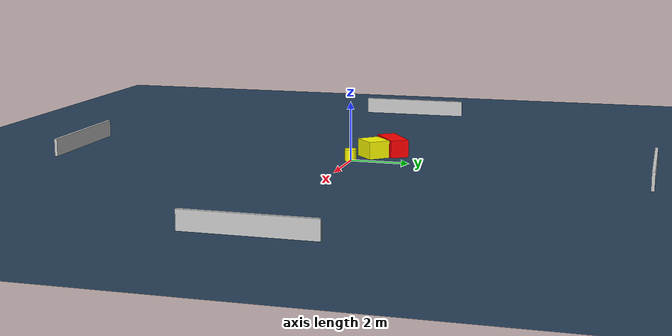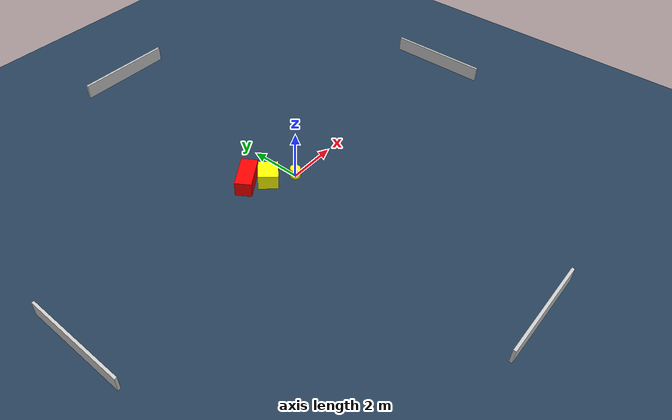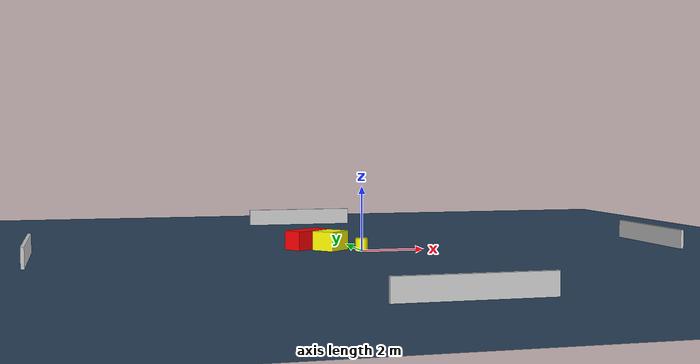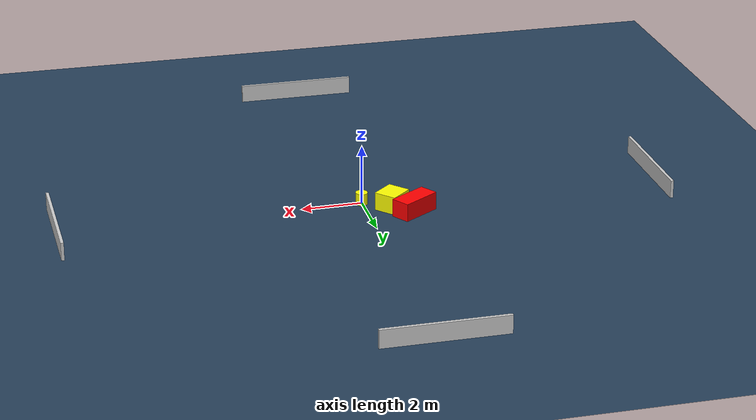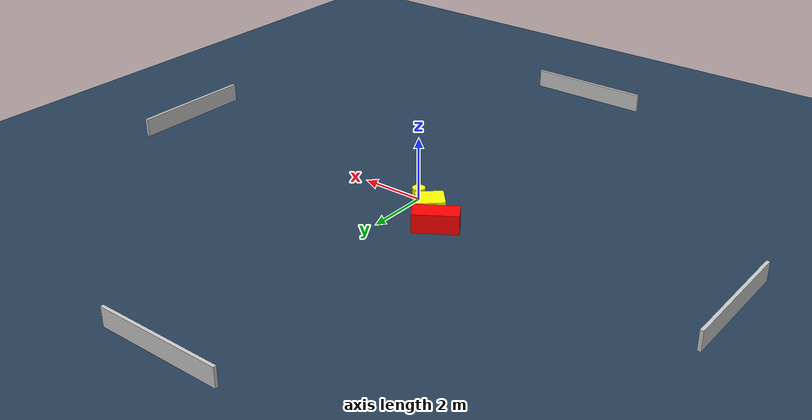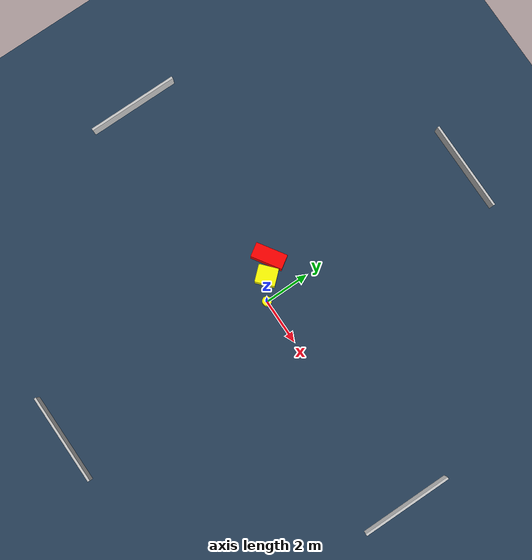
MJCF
<?xml version="1.0" ?>
<mujoco model="generated_environment">
  <option timestep="0.01" integrator="RK4" cone="elliptic"/>
  <default>
    <geom density="1"/>
  </default>
  <asset>
    <texture builtin="gradient" height="3072" name="skybox" rgb1="0.3 0.5 0.7" rgb2="0 0 0" type="skybox" width="512"/>
    <texture builtin="checker" height="300" name="groundplane" rgb1="0.2 0.3 0.4" rgb2="0.1 0.2 0.3" type="2d" width="300"/>
    <material name="groundplane" reflectance="0.2" texrepeat="5 5" texture="groundplane"/>
  </asset>
  <worldbody>
    <light dir="0 0 -1" directional="true" pos="0 0 1.5"/>
    <geom condim="3" friction="0.5 0.005 0.001" material="groundplane" name="floor" pos="0 0 0" size="0 0 0.05" type="plane"/>
    <body name="walls">
      <geom name="wall_1" condim="4" pos="-10.0 0.0 0.3" rgba="0.800000011920929 0.800000011920929 0.800000011920929 1.0" size="0.05 2.0 0.3" type="box"/>
      <geom name="wall_2" condim="4" pos="10.0 0.0 0.3" rgba="0.800000011920929 0.800000011920929 0.800000011920929 1.0" size="0.05 2.0 0.3" type="box"/>
      <geom name="wall_3" condim="4" pos="0.0 -10.0 0.3" rgba="0.800000011920929 0.800000011920929 0.800000011920929 1.0" size="2.0 0.05 0.3" type="box"/>
      <geom name="wall_4" condim="4" pos="0.0 10.0 0.3" rgba="0.800000011920929 0.800000011920929 0.800000011920929 1.0" size="2.0 0.05 0.3" type="box"/>
    </body>
    <body name="robot">
      <joint name="joint_x" type="slide" pos="0 0 0" axis="1 0 0"/>
      <joint name="joint_y" type="slide" pos="0 0 0" axis="0 1 0"/>
      <geom name="robot" type="cylinder" pos="0.0 0.0 0.2" size="0.2 0.2 0.0" mass="5.0" friction="1.0 0.005 0.0001" condim="4" rgba="1.0 1.0 0.0 1.0"/>
    </body>
    <body name="obstacle_1_movable">
      <geom name="obstacle_1_movable" condim="4" pos="-0.870842360275978 0.5821254067070923 0.3" euler="0 0 41.99569882778286" friction="0.0 0.005 0.001" rgba="1.0 1.0 0.0 1.0" size="0.4271030006795377 0.3813815073632242 0.3" type="box" mass="0.1"/>
      <joint type="free"/>
    </body>
    <body name="obstacle_2_static">
      <geom name="obstacle_2_static" condim="4" pos="-1.4824117500820833 1.1156855368503813 0.3" euler="0 0 213.01573103184347" friction="0.0 0.005 0.001" rgba="1.0 0.0 0.0 1.0" size="0.6936222394193378 0.31961350304367975 0.3" type="box"/>
    </body>
  </worldbody>
  <actuator>
    <motor name="actuator_x" joint="joint_x" gear="1" ctrlrange="-1 1"/>
    <motor name="actuator_y" joint="joint_y" gear="1" ctrlrange="-1 1"/>
  </actuator>
</mujoco>
